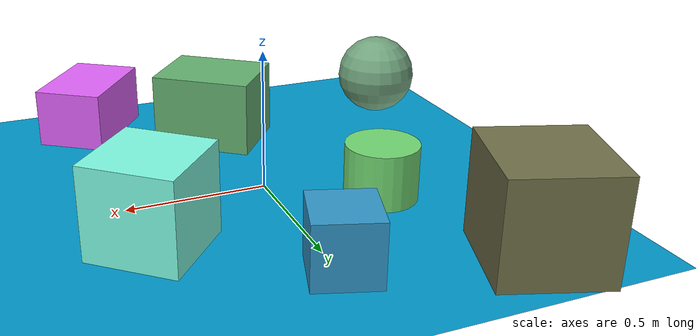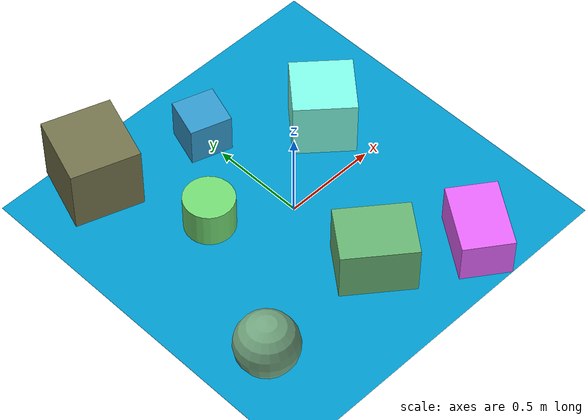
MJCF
<mujoco>
   <asset>
<texture type="skybox" builtin="gradient" rgb1="0.7 0.5 0.5" rgb2="0.4 0.5 0.5" width="500" height="500"/>
<texture name="checker_0" builtin="checker" rgb1="0.0 0.7 0.7" rgb2="0.8 0.7 0.2" width="500" height="500"/>
<texture name="flat_1" builtin="flat" rgb1="0.9 0.4 1.0" rgb2="0.9 0.4 1.0"  width="500" height="500"/>
<texture name="gradient_2" builtin="gradient" rgb1="0.7 0.8 0.9" rgb2="0.2 0.9 0.0" width="500" height="500"/>
<texture name="gradient_3" builtin="gradient" rgb1="0.8 0.4 0.3" rgb2="0.1 0.9 0.7" width="500" height="500"/>
<texture name="gradient_4" builtin="gradient" rgb1="0.6 0.0 0.0" rgb2="0.3 0.9 0.6" width="500" height="500"/>
<texture name="flat_5" builtin="flat" rgb1="0.5 1.0 0.9" rgb2="0.5 1.0 0.9"  width="500" height="500"/>
<texture name="flat_6" builtin="flat" rgb1="0.2 0.6 0.8" rgb2="0.2 0.6 0.8"  width="500" height="500"/><material name="checker_0_mat" reflectance="0.1684786192171599" texrepeat="2 2" texture="checker_0" texuniform="false" />
<material name="flat_1_mat" reflectance="0.693100693538754" texture="flat_1" texuniform="true"/>
<material name="gradient_2_mat" reflectance="0.5673575079036045" texture="gradient_2" texuniform="true"/>
<material name="gradient_3_mat" reflectance="0.3161561771548925" texture="gradient_3" texuniform="true"/>
<material name="gradient_4_mat" reflectance="0.843887317480098" texture="gradient_4" texuniform="true"/>
<material name="flat_5_mat" reflectance="0.34117898170301153" texture="flat_5" texuniform="true"/>
<material name="flat_6_mat" reflectance="0.8960656409112638" texture="flat_6" texuniform="true"/>
   </asset>

   <worldbody>
     <geom type="plane" size="1 1 0.1" rgba="0.0 0.6 0.8 1" />
<light pos="-0.6000761786470672 0.6812278977184274 2" dir="0 0 -1" cutoff="90" diffuse="1 1 1" specular="1 1 1"/>
<geom type="box" pos="0.02 -0.52 0.14" size="0.15 0.19 0.14" material="checker_0_mat" euler="0 0 52" />
<geom type="box" pos="0.47 -0.77 0.11" size="0.19 0.13 0.11" material="flat_1_mat" euler="0 0 55" />
<geom type="cylinder" pos="-0.35 0.22 0.1" size="0.13 0.1 0.1" material="gradient_2_mat" euler="0 0 64" />
<geom type="sphere" pos="-0.73 -0.56 0.16" size="0.16 0.16 0.16" material="gradient_3_mat" euler="0 0 69" />
<geom type="box" pos="-0.59 0.78 0.18" size="0.19 0.18 0.18" material="gradient_4_mat" euler="0 0 71" />
<geom type="box" pos="0.47 0.27 0.16" size="0.16 0.16 0.16" material="flat_5_mat" euler="0 0 49" />
<geom type="box" pos="-0.01 0.63 0.11" size="0.11 0.11 0.11" material="flat_6_mat" euler="0 0 72" /><camera euler="60 0 180" fovy="60" name="camera2" pos="0.2 -1.5 1"></camera>   </worldbody>
   <visual>
      <headlight diffuse="0.7 0.7 0.7"/>
   </visual>
</mujoco>
